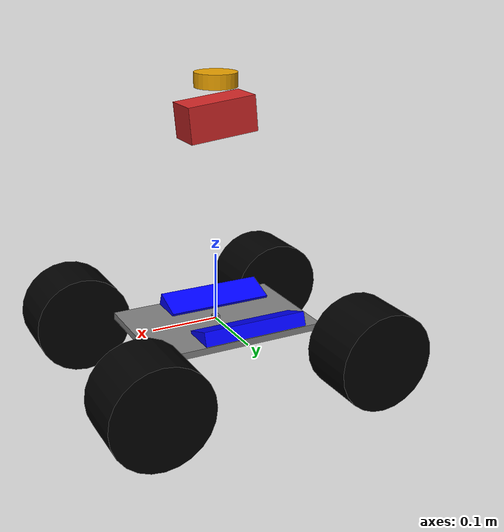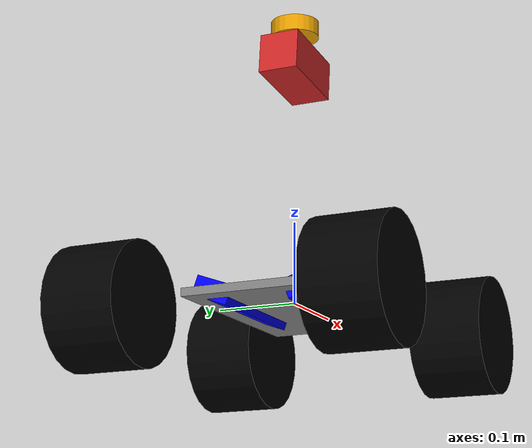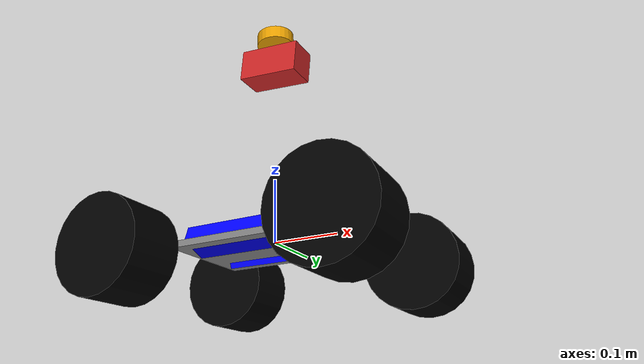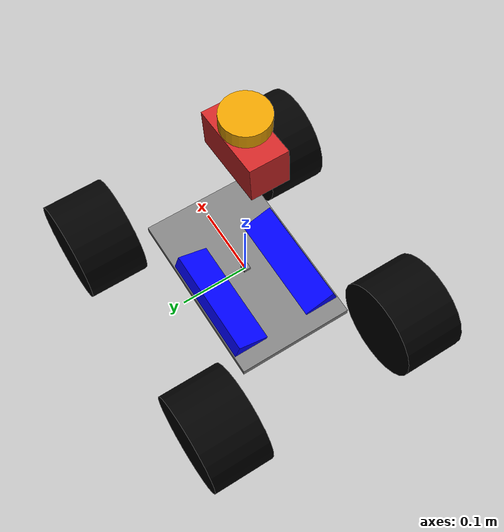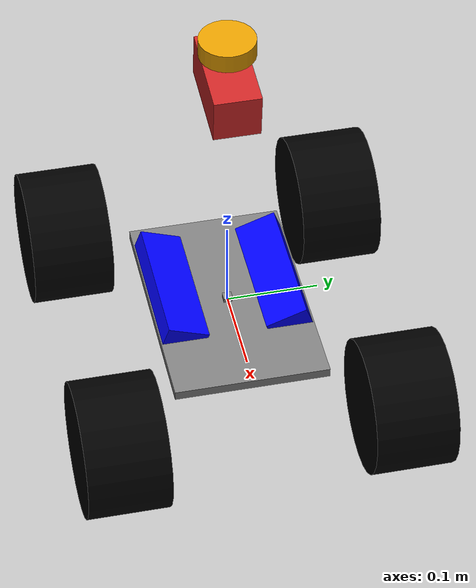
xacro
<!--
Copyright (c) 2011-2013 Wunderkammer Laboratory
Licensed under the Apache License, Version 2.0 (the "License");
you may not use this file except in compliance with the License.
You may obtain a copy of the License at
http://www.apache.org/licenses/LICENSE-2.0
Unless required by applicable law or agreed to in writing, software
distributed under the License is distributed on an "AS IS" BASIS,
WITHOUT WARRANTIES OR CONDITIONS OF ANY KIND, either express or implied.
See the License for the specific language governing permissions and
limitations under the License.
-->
<?xml version="1.0"?>

<robot name="Trooper" xmlns:xacro="http://www.ros.org/wiki/xacro">
  <!-- Degree-to-radian conversions -->
  <xacro:property name="degrees_27" value="0.471"/>
  <xacro:property name="degrees_45" value="0.785398163"/>
  <xacro:property name="degrees_90" value="1.57079633"/>
  <xacro:property name="degrees_180" value="3.141592"/>

  <!-- chassis_length is measured along the x axis, chassis_width
       along the y axis, and chassis_height along the z axis. -->
  <xacro:property name="chassis_length" value="0.258"/>
  <xacro:property name="chassis_width" value="0.168"/>
  <xacro:property name="chassis_height" value="0.01"/>
  <xacro:property name="chassis_mass" value="2.788"/>

  <xacro:property name="battery_x_offset" value="0.055"/>
  <xacro:property name="battery_dist" value="0.065"/>
  <xacro:property name="battery_comp_depth" value="0.02"/>
  <xacro:property name="battery_comp_angle" value="0.34906585"/>
  <xacro:property name="battery_length" value="0.16"/>
  <xacro:property name="battery_width" value="0.047"/>
  <xacro:property name="battery_height" value="0.024"/>
  <xacro:property name="battery_mass" value="0.5025"/>

  <xacro:property name="hub_dia" value="0.09652"/>
  <xacro:property name="tire_dia" value="0.14605"/>
  <xacro:property name="tire_width" value="0.0889"/>
  <xacro:property name="hex_hub_depth" value="0.01445"/>
  <xacro:property name="wheel_mass" value="0.29"/>

  <xacro:property name="wheelbase" value="0.335"/>
  <xacro:property name="hex_hub_dist" value="0.365"/>
  <xacro:property name="axle_length" value="0.03"/>
  <xacro:property name="wheel_travel" value="0.084"/>
  <xacro:property name="shock_z_offset" value="0.0655"/>

  <xacro:property name="shock_eff_limit" value="12.5106"/>
  <xacro:property name="shock_vel_limit" value="1000"/>

  <xacro:property name="axle_eff_limit" value="5.12766"/>
  <xacro:property name="axle_vel_limit" value="144.8696"/>

  <!-- These constants are used to simulate a Traxxas 2056 servo operated at
       6 V. servo_stall_torque is measured in N m. servo_no_load_speed is
       measured in rad/s. -->
  <xacro:property name="servo_stall_torque" value="0.5649"/>
  <xacro:property name="servo_no_load_speed" value="4.553"/>

  <!-- ctrl_period is gazebo_ros_control's control period. Unit: hertz. -->
  <xacro:property name="ctrl_period" value="0.01"/>

  <material name="battery_mat">
    <color rgba="0 0 1 1"/>
  </material>
  <material name="chassis_mat">
    <color rgba="0.5 0.5 0.5 1"/>
  </material>
  <material name="tire_mat">
    <color rgba="0 0 0 1"/>
  </material>

  <!-- Null inertial element. This is needed to make the model work with
       Gazebo. -->
  <xacro:macro name="null_inertial">
    <inertial>
      <mass value="0.001"/>
      <inertia ixx="0.001" ixy="0" ixz="0" iyy="0.001" iyz="0" izz="0.001"/>
    </inertial>
  </xacro:macro>

  <!-- Inertia of a solid cuboid. Width is measured along the x axis, depth
       along the y axis, and height along the z axis. -->
  <xacro:macro name="solid_cuboid_inertial"
               params="width depth height mass *origin">
    <inertial>
      <xacro:insert_block name="origin"/>
      <mass value="${mass}"/>
      <inertia ixx="${mass * (depth * depth + height * height) / 12}"
               ixy="0" ixz="0"
               iyy="${mass * (width * width + height * height) / 12}"
               iyz="0"
               izz="${mass * (width * width + depth * depth) / 12}"/>
    </inertial>
  </xacro:macro>

  <xacro:macro name="thick_walled_tube_inertial"
               params="inner_rad outer_rad height mass">
    <inertial>
      <mass value="${mass}"/>
      <inertia ixx="${(1 / 12) * mass * (3 * (inner_rad * inner_rad +
                    outer_rad * outer_rad) + height * height)}"
               ixy="0" ixz="0"
               iyy="${(1 / 12) * mass * (3 * (inner_rad * inner_rad +
                    outer_rad * outer_rad) + height * height)}"
               iyz="0"
               izz="${mass * (inner_rad * inner_rad +
                    outer_rad * outer_rad) / 2}"/>
    </inertial>
  </xacro:macro>

  <!-- Battery -->
  <xacro:macro name="battery" params="prefix reflect">
    <joint name="chassis_to_${prefix}_battery" type="fixed">
      <parent link="chassis"/>
      <child link="${prefix}_battery_offset"/>
      <origin xyz="${battery_x_offset - battery_length / 2}
                   ${reflect * battery_dist / 2}
                   0"
              rpy="${reflect * battery_comp_angle} 0 0"/>
    </joint>

    <link name="${prefix}_battery_offset">
      <xacro:null_inertial/>
    </link>

    <joint name="offset_to_${prefix}_battery" type="fixed">
      <parent link="${prefix}_battery_offset"/>
      <child link="${prefix}_battery"/>
      <origin xyz="0
                   ${reflect * battery_width / 2}
                   ${(battery_height / 2) - battery_comp_depth}"/>
    </joint>

    <link name="${prefix}_battery">
      <visual>
        <geometry>
          <box size="${battery_length} ${battery_width} ${battery_height}"/>
        </geometry>
        <material name="battery_mat"/>
      </visual>

      <collision>
        <geometry>
          <box size="${battery_length} ${battery_width} ${battery_height}"/>
        </geometry>
      </collision>

      <xacro:solid_cuboid_inertial
         width="${battery_length}" depth="${battery_width}"
         height="${battery_height}" mass="${battery_mass}">
        <origin/>
      </xacro:solid_cuboid_inertial>
    </link>

    <gazebo reference="${prefix}_battery">
      <material>Gazebo/Blue</material>
    </gazebo>
  </xacro:macro>

  <!-- Shock absorber -->
  <xacro:macro name="shock"
               params="lr_prefix fr_prefix lr_reflect fr_reflect child">
    <joint name="${lr_prefix}_${fr_prefix}_shock" type="prismatic">
      <parent link="chassis"/>
      <child link="${child}"/>

      <origin xyz="${fr_reflect * wheelbase / 2}
                   ${lr_reflect * ((hex_hub_dist / 2) - axle_length)}
                   ${(wheel_travel / 2) - shock_z_offset}"/>
      <axis xyz="0 0 -1"/>
      <limit lower="${-wheel_travel / 2}" upper="${wheel_travel / 2}"
             effort="${shock_eff_limit}" velocity="${shock_vel_limit}"/>
    </joint>
    <transmission name="${lr_prefix}_${fr_prefix}_shock_trans">
      <type>transmission_interface/SimpleTransmission</type>
      <joint name="${lr_prefix}_${fr_prefix}_shock">
        <hardwareInterface>hardware_interface/EffortJointInterface</hardwareInterface>
      </joint>
      <actuator name="${lr_prefix}_${fr_prefix}_shock_act">
        <hardwareInterface>hardware_interface/EffortJointInterface</hardwareInterface>
        <mechanicalReduction>1</mechanicalReduction>
      </actuator>
    </transmission>
  </xacro:macro>

  <!-- The "wheel" macro defines an axle carrier, axle, and wheel. -->
  <xacro:macro name="wheel" params="lr_prefix fr_prefix lr_reflect">
    <link name="${lr_prefix}_${fr_prefix}_axle_carrier">
      <xacro:null_inertial/>
    </link>

    <!-- The left and right axles have the same axis so that identical
         rotation values cause the wheels to rotate in the same direction. -->
    <joint name="${lr_prefix}_${fr_prefix}_axle" type="continuous">
      <parent link="${lr_prefix}_${fr_prefix}_axle_carrier"/>
      <child link="${lr_prefix}_${fr_prefix}_wheel"/>
      <origin rpy="${degrees_90} 0 0"/>
      <axis xyz="0 0 -1"/>
      <limit effort="${axle_eff_limit}" velocity="${axle_vel_limit}"/>
    </joint>
    <transmission name="${lr_prefix}_${fr_prefix}_axle_trans">
      <type>transmission_interface/SimpleTransmission</type>
      <joint name="${lr_prefix}_${fr_prefix}_axle">
	<hardwareInterface>hardware_interface/EffortJointInterface</hardwareInterface>
      </joint>
	<actuator name="${lr_prefix}_${fr_prefix}_axle_act">
        <hardwareInterface>hardware_interface/EffortJointInterface</hardwareInterface>
        <mechanicalReduction>1</mechanicalReduction>
      </actuator>
    </transmission>

    <link name="${lr_prefix}_${fr_prefix}_wheel">
      <visual>
        <origin xyz="0
                     ${lr_reflect * (axle_length - (tire_width /
                     2 - hex_hub_depth))}
                     0"/>
        <geometry>
          <cylinder radius="${tire_dia / 2}" length="${tire_width}"/>
        </geometry>
        <material name="tire_mat"/>
      </visual>

      <collision>
        <origin xyz="0
                     ${lr_reflect * (axle_length - (tire_width /
                     2 - hex_hub_depth))}
                     0"/>
        <geometry>
          <cylinder radius="${tire_dia / 2}" length="${tire_width}"/>
        </geometry>
      </collision>

      <xacro:thick_walled_tube_inertial
          inner_rad="${hub_dia / 2}" outer_rad="${tire_dia / 2}"
          height="${tire_width}" mass="${wheel_mass}"/>
    </link>

    <gazebo reference="${lr_prefix}_${fr_prefix}_wheel">
      <material>Gazebo/Black</material>
    </gazebo>
  </xacro:macro>

  <!-- Front wheel -->
  <xacro:macro name="front_wheel"
               params="lr_prefix fr_prefix lr_reflect fr_reflect">
    <xacro:shock lr_prefix="${lr_prefix}" fr_prefix="${fr_prefix}"
                 lr_reflect="${lr_reflect}" fr_reflect="${fr_reflect}"
                 child="${lr_prefix}_steering_link"/>

    <link name="${lr_prefix}_steering_link">
      <xacro:null_inertial/>
    </link>

    <joint name="${lr_prefix}_steering_joint" type="revolute">
      <parent link="${lr_prefix}_steering_link"/>
      <child link="${lr_prefix}_${fr_prefix}_axle_carrier"/>
      <axis xyz="0 0 1"/>
      <limit lower="${-degrees_27}" upper="${degrees_27}"
             effort="${servo_stall_torque}" velocity="${servo_no_load_speed}"/>
    </joint>
    <transmission name="${lr_prefix}_steering_trans">
      <type>transmission_interface/SimpleTransmission</type>
      <joint name="${lr_prefix}_steering_joint">
        <hardwareInterface>hardware_interface/EffortJointInterface</hardwareInterface>
      </joint>
      <actuator name="${lr_prefix}_steering_act">
        <hardwareInterface>hardware_interface/EffortJointInterface</hardwareInterface>
        <mechanicalReduction>1</mechanicalReduction>
      </actuator>
    </transmission>

    <xacro:wheel lr_prefix="${lr_prefix}" fr_prefix="${fr_prefix}"
                 lr_reflect="${lr_reflect}"/>
  </xacro:macro>

  <!-- Rear wheel -->
  <xacro:macro name="rear_wheel"
               params="lr_prefix fr_prefix lr_reflect fr_reflect">
    <xacro:shock lr_prefix="${lr_prefix}" fr_prefix="${fr_prefix}"
                 lr_reflect="${lr_reflect}" fr_reflect="${fr_reflect}"
                 child="${lr_prefix}_${fr_prefix}_axle_carrier"/>
    <xacro:wheel lr_prefix="${lr_prefix}" fr_prefix="${fr_prefix}"
                 lr_reflect="${lr_reflect}"/>
  </xacro:macro>

  <!-- base_link must have geometry so that its axes can be displayed in
       rviz. -->
  <link name="base_link">
    <visual>
      <geometry>
        <box size="0.01 0.01 0.01"/>
      </geometry>
      <material name="chassis_mat"/>
    </visual>
  </link>
  <gazebo reference="base_link">
    <material>Gazebo/Grey</material>
  </gazebo>

  <!-- Chassis -->
  <link name="chassis">
    <visual>
      <origin xyz="0 0 ${-chassis_height / 2}"/>
      <geometry>
        <box size="${chassis_length} ${chassis_width} ${chassis_height}"/>
      </geometry>
      <material name="chassis_mat"/>
    </visual>

    <collision>
      <origin xyz="0 0 ${-chassis_height / 2}"/>
      <geometry>
        <box size="${chassis_length} ${chassis_width} ${chassis_height}"/>
      </geometry>
    </collision>

    <xacro:solid_cuboid_inertial
        width="${chassis_length}" depth="${chassis_width}"
        height="${chassis_height}" mass="${chassis_mass}">
      <origin xyz="0 0 ${-chassis_height / 2}"/>
    </xacro:solid_cuboid_inertial>
  </link>
  <gazebo reference="chassis">
    <material>Gazebo/Grey</material>
  </gazebo>

  <joint name="base_link_to_chasis" type="fixed">
    <parent link="base_link"/>
    <child link="chassis"/>
  </joint>

  <!-- Batteries -->
  <xacro:battery prefix="left" reflect="1"/>
  <xacro:battery prefix="right" reflect="-1"/>

  <!-- Wheels -->
  <xacro:front_wheel lr_prefix="left" fr_prefix="front"
                     lr_reflect="1" fr_reflect="1"/>
  <xacro:front_wheel lr_prefix="right" fr_prefix="front"
                     lr_reflect="-1" fr_reflect="1"/>
  <xacro:rear_wheel lr_prefix="left" fr_prefix="rear"
                    lr_reflect="1" fr_reflect="-1"/>
  <xacro:rear_wheel lr_prefix="right" fr_prefix="rear"
                    lr_reflect="-1" fr_reflect="-1"/>

  <!-- Laser scanner -->
  <joint name="laser_joint" type="fixed">
    <axis xyz="0 1 0" />
    <origin xyz="0 0 0.35" rpy="${degrees_180} 0 ${degrees_180}"/>
    <parent link="base_link"/>
    <child link="laser_link"/>
  </joint>

  <!-- Laser Laser -->
  <link name="laser_link">
    <collision>
      <origin xyz="0 0 0" rpy="0 0 0"/>
      <geometry>
    <box size="0.1 0.1 0.1"/>
      </geometry>
    </collision>

    <visual>
      <origin xyz="0 0 0" rpy="0 0 0"/>
      <geometry>
        <cylinder radius="0.03" length="0.02"/>
      </geometry>
    </visual>

    <inertial>
      <mass value="1e-5" />
      <origin xyz="0 0 0" rpy="0 0 0"/>
      <inertia ixx="1e-6" ixy="0" ixz="0" iyy="1e-6" iyz="0" izz="1e-6" />
    </inertial>
  </link>

    <!-- Laser -->
  <gazebo reference="laser_link">
    <sensor type="ray" name="rplidar_sensor">
      <pose>0 0 0 0 0</pose>
      <visualize>true</visualize>
      <update_rate>10</update_rate>
      <ray>
        <scan>
          <horizontal>
            <samples>360</samples>
            <resolution>2</resolution>

            <min_angle>-${degrees_180}</min_angle>
            <max_angle>${degrees_180}</max_angle>
          </horizontal>
        </scan>
        <range>
          <min>0.10</min>
          <max>18.0</max>
          <resolution>0.002</resolution>
        </range>
        <noise>
          <type>gaussian</type>
          <mean>0.0</mean>
          <stddev>0.02</stddev>
        </noise>
      </ray>
      <plugin name="gazebo_ros_head_hokuyo_controller" filename="libgazebo_ros_laser.so">
        <topicName>laser/scan</topicName>
        <frameName>/laser_link</frameName>
      </plugin>
    </sensor>
  </gazebo>

  <!-- Camera -->
   <joint name="camera_joint" type="fixed">
    <axis xyz="0 1 0" />
    <origin xyz="0 0 0.3" rpy="0 0.1 0"/>
    <parent link="base_link"/>
    <child link="camera_link"/>
  </joint>

  <!-- Camera -->
  <xacro:property name="camera_size" value="0.05" /> <!-- Size of square 'camera' box -->
  <link name="camera_link">
    <collision>
      <origin xyz="0 0 0" rpy="0 0 0"/>
      <geometry>
    <box size="${camera_size} ${camera_size} ${camera_size}"/>
      </geometry>
    </collision>

    <visual>
      <origin xyz="0 0 0" rpy="0 0 0"/>
      <geometry>
    <box size="0.1 ${camera_size} ${camera_size}"/>
      </geometry>
    </visual>

    <inertial>
      <mass value="1e-5" />
      <origin xyz="0 0 0" rpy="0 0 0"/>
      <inertia ixx="1e-6" ixy="0" ixz="0" iyy="1e-6" iyz="0" izz="1e-6" />
    </inertial>
  </link>

  <!-- IMU link -->
   <joint name="imu_joint" type="fixed">
    <axis xyz="0 1 0" />
    <origin xyz="0 0 0.02" rpy="0 0 0"/>
    <parent link="base_link"/>
    <child link="imu_link"/>
   </joint>
   <link name="imu_link">
   </link>

   <gazebo>
    <plugin name="gazebo_ros_control" filename="libgazebo_ros_control.so">
    </plugin>
  </gazebo>

   <!-- camera -->
  <gazebo reference="camera_link">
    <material>Gazebo/Red</material>
    <sensor type="camera" name="camera1">
      <update_rate>30.0</update_rate>
      <camera name="head">
        <horizontal_fov>1.5</horizontal_fov>
        <image>
          <width>600</width>
          <height>480</height>
          <format>R8G8B8</format>
        </image>
        <clip>
          <near>0.02</near>
          <far>300</far>
        </clip>
        <noise>
          <type>gaussian</type>
          <!-- Noise is sampled independently per pixel on each frame.
               That pixel's noise value is added to each of its color
               channels, which at that point lie in the range [0,1]. -->
          <mean>0.0</mean>
          <stddev>0.07</stddev>
        </noise>
      </camera>
      <plugin name="camera_controller" filename="libgazebo_ros_camera.so">
        <alwaysOn>true</alwaysOn>
        <updateRate>0.0</updateRate>
        <cameraName>camera1</cameraName>
        <imageTopicName>image_raw</imageTopicName>
        <cameraInfoTopicName>camera_info</cameraInfoTopicName>
        <frameName>camera_link</frameName>
        <hackBaseline>0.07</hackBaseline>
        <distortionK1>0.0</distortionK1>
        <distortionK2>0.0</distortionK2>
        <distortionK3>0.0</distortionK3>
        <distortionT1>0.0</distortionT1>
        <distortionT2>0.0</distortionT2>
      </plugin>
    </sensor>
  </gazebo>

  <gazebo>
    <plugin name="imu_plugin" filename="libgazebo_ros_imu.so">
      <alwaysOn>true</alwaysOn>
      <bodyName>imu_link</bodyName>
      <topicName>imu</topicName>
      <serviceName>imu_service</serviceName>
      <gaussianNoise>0.0</gaussianNoise>
      <updateRate>20.0</updateRate>
    </plugin>
  </gazebo>

</robot>
